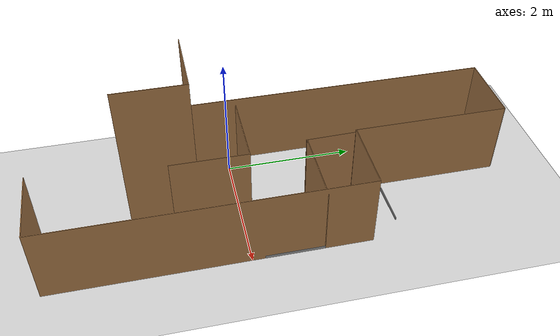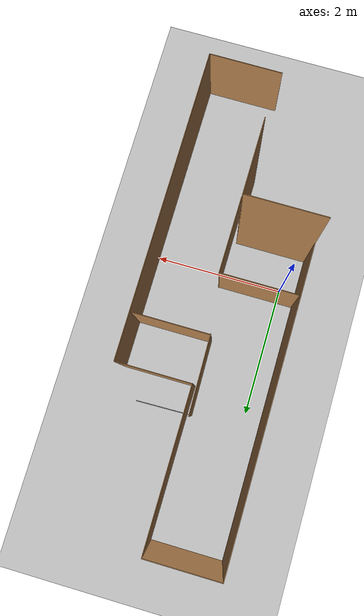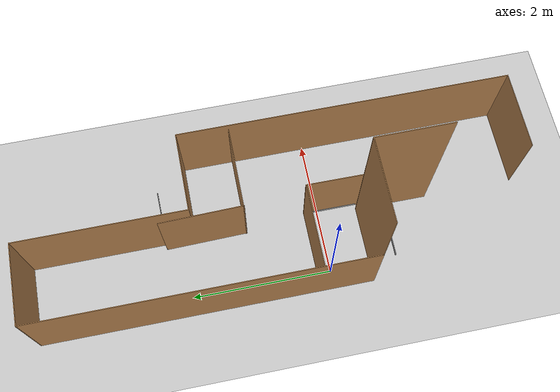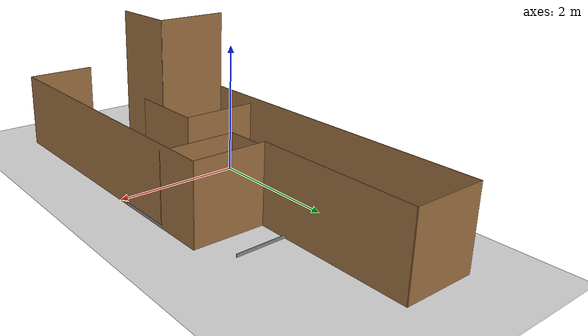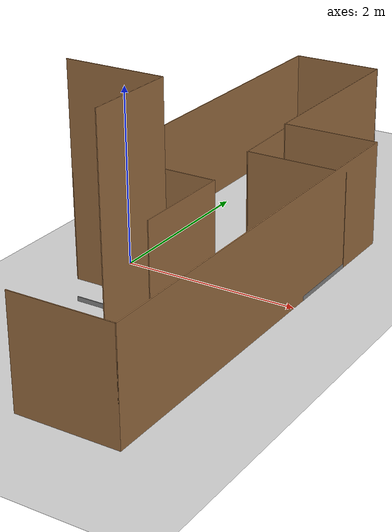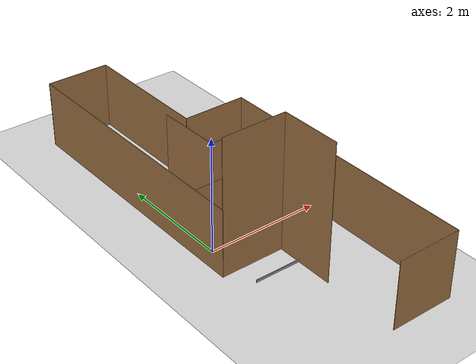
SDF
<sdf version="1.6">
 <world name="default">
  <light name="sun" type="directional">
   <pose>0 0 10 0 -0 0</pose>
   <diffuse>0.8 0.8 0.8 1</diffuse>
   <specular>0.2 0.2 0.2 1</specular>
   <attenuation>
    <range>1000</range>
    <constant>0.9</constant>
    <linear>0.01</linear>
    <quadratic>0.001</quadratic>
   </attenuation>
   <direction>-0.5 0.1 -0.9</direction>
  </light>
  <model name="ground_plane">
   <static>1</static>
   <link name="link">
    <collision name="collision">
     <geometry><plane><normal>0 0 1</normal><size>100 100</size></plane></geometry>
     <surface><friction><ode><mu>100</mu><mu2>50</mu2></ode></friction></surface>
    </collision>
    <visual name="visual">
     <cast_shadows>0</cast_shadows>
     <geometry><plane><normal>0 0 1</normal><size>100 100</size></plane></geometry>
     <material>
      <script><uri>file://media/materials/scripts/gazebo.material</uri><name>Gazebo/Grey</name></script>
     </material>
    </visual>
   </link>
  </model>
  <gravity>0 0 -9.8</gravity>
  <magnetic_field>6e-06 2.3e-05 -4.2e-05</magnetic_field>
  <atmosphere type="adiabatic"/>
  <physics name="default_physics" default="0" type="ode">
   <max_step_size>0.001</max_step_size>
   <real_time_factor>1</real_time_factor>
   <real_time_update_rate>1000</real_time_update_rate>
  </physics>
  <scene><ambient>0.4 0.4 0.4 1</ambient><background>0.7 0.7 0.7 1</background><shadows>1</shadows></scene>
  <audio><device>default</device></audio>
  <spherical_coordinates>
   <surface_model>EARTH_WGS84</surface_model>
   <latitude_deg>0</latitude_deg>
   <longitude_deg>0</longitude_deg>
   <elevation>0</elevation>
   <heading_deg>0</heading_deg>
  </spherical_coordinates>
  <model name="MAN1_CENTER">
   <model name="Arena_MAN1">
    <model name="Paredes_personalizadas_finder">
     <pose>0.529687 0.221886 0 0 -0 0</pose>
     <link name="Wall_0">
      <collision name="Wall_0_Collision">
       <geometry><box><size>1.195 0.01 1.1</size></box></geometry>
       <pose>0 0 0.55 0 -0 0</pose>
      </collision>
      <visual name="Wall_0_Visual">
       <pose>0 0 0.55 0 -0 0</pose>
       <geometry><box><size>1.195 0.01 1.1</size></box></geometry>
       <material>
        <script><uri>file://media/materials/scripts/gazebo.material</uri><name>Gazebo/Wood</name></script>
        <ambient>1 1 1 1</ambient>
       </material>
       <meta><layer>0</layer></meta>
      </visual>
      <pose>0 0.444 0 0 -0 3.14159</pose>
     </link>
     <link name="Wall_2">
      <collision name="Wall_2_Collision">
       <geometry><box><size>0.898 0.01 0.05</size></box></geometry>
       <pose>0 0 0.025 0 -0 0</pose>
      </collision>
      <visual name="Wall_2_Visual">
       <pose>0 0 0.025 0 -0 0</pose>
       <geometry><box><size>0.898 0.01 0.05</size></box></geometry>
       <material>
        <script><uri>file://media/materials/scripts/gazebo.material</uri><name>Gazebo/Grey</name></script>
        <ambient>1 1 1 1</ambient>
       </material>
       <meta><layer>0</layer></meta>
      </visual>
      <pose>0.5925 0 0 0 -0 -1.5708</pose>
     </link>
     <static>1</static>
    </model>
    <model name="Paredes_personalizadas_finder_0">
     <pose>-0.37663 -0.812332 0 0 0 -1.57597</pose>
     <link name="Wall_0">
      <collision name="Wall_0_Collision">
       <geometry><box><size>1.195 0.01 1.1</size></box></geometry>
       <pose>0 0 0.55 0 -0 0</pose>
      </collision>
      <visual name="Wall_0_Visual">
       <pose>0 0 0.55 0 -0 0</pose>
       <geometry><box><size>1.195 0.01 1.1</size></box></geometry>
       <material>
        <script><uri>file://media/materials/scripts/gazebo.material</uri><name>Gazebo/Wood</name></script>
        <ambient>1 1 1 1</ambient>
       </material>
       <meta><layer>0</layer></meta>
      </visual>
      <pose>0 0.444 0 0 -0 3.14159</pose>
     </link>
     <link name="Wall_2">
      <collision name="Wall_2_Collision">
       <geometry><box><size>0.898 0.01 0.05</size></box></geometry>
       <pose>0 0 0.025 0 -0 0</pose>
      </collision>
      <visual name="Wall_2_Visual">
       <pose>0 0 0.025 0 -0 0</pose>
       <geometry><box><size>0.898 0.01 0.05</size></box></geometry>
       <material>
        <script><uri>file://media/materials/scripts/gazebo.material</uri><name>Gazebo/Grey</name></script>
        <ambient>1 1 1 1</ambient>
       </material>
       <meta><layer>0</layer></meta>
      </visual>
      <pose>0.5925 0 0 0 -0 -1.5708</pose>
     </link>
     <static>1</static>
    </model>
    <model name="Paredes_personalizadas_finder_1">
     <pose>-0.526117 -0.66875 0 0 -0 0</pose>
     <link name="Wall_0">
      <collision name="Wall_0_Collision">
       <geometry><box><size>1.195 0.01 1.1</size></box></geometry>
       <pose>0 0 0.55 0 -0 0</pose>
      </collision>
      <visual name="Wall_0_Visual">
       <pose>0 0 0.55 0 -0 0</pose>
       <geometry><box><size>1.195 0.01 1.1</size></box></geometry>
       <material>
        <script><uri>file://media/materials/scripts/gazebo.material</uri><name>Gazebo/Wood</name></script>
        <ambient>1 1 1 1</ambient>
       </material>
       <meta><layer>0</layer></meta>
      </visual>
      <pose>0 0.444 0 0 -0 3.14159</pose>
     </link>
     <link name="Wall_2">
      <collision name="Wall_2_Collision">
       <geometry><box><size>0.898 0.01 0.05</size></box></geometry>
       <pose>0 0 0.025 0 -0 0</pose>
      </collision>
      <visual name="Wall_2_Visual">
       <pose>0 0 0.025 0 -0 0</pose>
       <geometry><box><size>0.898 0.01 0.05</size></box></geometry>
       <material>
        <script><uri>file://media/materials/scripts/gazebo.material</uri><name>Gazebo/Grey</name></script>
        <ambient>1 1 1 1</ambient>
       </material>
       <meta><layer>0</layer></meta>
      </visual>
      <pose>0.5925 0 0 0 -0 -1.5708</pose>
     </link>
     <static>1</static>
    </model>
    <model name="Paredes_personalizadas_finder_2">
     <pose>0.373059 1.2592 0 0 -0 1.59141</pose>
     <link name="Wall_0">
      <collision name="Wall_0_Collision">
       <geometry><box><size>1.195 0.01 1.1</size></box></geometry>
       <pose>0 0 0.55 0 -0 0</pose>
      </collision>
      <visual name="Wall_0_Visual">
       <pose>0 0 0.55 0 -0 0</pose>
       <geometry><box><size>1.195 0.01 1.1</size></box></geometry>
       <material>
        <script><uri>file://media/materials/scripts/gazebo.material</uri><name>Gazebo/Wood</name></script>
        <ambient>1 1 1 1</ambient>
       </material>
       <meta><layer>0</layer></meta>
      </visual>
      <pose>0 0.444 0 0 -0 3.14159</pose>
     </link>
     <link name="Wall_2">
      <collision name="Wall_2_Collision">
       <geometry><box><size>0.898 0.01 0.05</size></box></geometry>
       <pose>0 0 0.025 0 -0 0</pose>
      </collision>
      <visual name="Wall_2_Visual">
       <pose>0 0 0.025 0 -0 0</pose>
       <geometry><box><size>0.898 0.01 0.05</size></box></geometry>
       <material>
        <script><uri>file://media/materials/scripts/gazebo.material</uri><name>Gazebo/Grey</name></script>
        <ambient>1 1 1 1</ambient>
       </material>
       <meta><layer>0</layer></meta>
      </visual>
      <pose>0.5925 0 0 0 -0 -1.5708</pose>
     </link>
     <static>1</static>
    </model>
    <static>0</static>
    <pose>0.003301 -0.100195 0 0 -0 0</pose>
   </model>
   <model name="MAN1_(CENTER)">
    <pose>-0.003301 0.1002 0 0 -0 0</pose>
    <link name="Wall_0">
     <collision name="Wall_0_Collision">
      <geometry><box><size>1.135 0.01 1.2</size></box></geometry>
      <pose>0 0 0.6 0 -0 0</pose>
     </collision>
     <visual name="Wall_0_Visual">
      <pose>0 0 0.6 0 -0 0</pose>
      <geometry><box><size>1.135 0.01 1.2</size></box></geometry>
      <material>
       <script><uri>file://media/materials/scripts/gazebo.material</uri><name>Gazebo/Wood</name></script>
       <ambient>1 1 1 1</ambient>
      </material>
      <meta><layer>0</layer></meta>
     </visual>
     <pose>0.565 -3.585 0 0 -0 0</pose>
    </link>
    <link name="Wall_10">
     <collision name="Wall_10_Collision">
      <geometry><box><size>4.795 0.01 1.2</size></box></geometry>
      <pose>0 0 0.6 0 -0 0</pose>
     </collision>
     <visual name="Wall_10_Visual">
      <pose>0 0 0.6 0 -0 0</pose>
      <geometry><box><size>4.795 0.01 1.2</size></box></geometry>
      <material>
       <script><uri>file://media/materials/scripts/gazebo.material</uri><name>Gazebo/Wood</name></script>
       <ambient>1 1 1 1</ambient>
      </material>
      <meta><layer>0</layer></meta>
     </visual>
     <pose>-1.1275 1.1925 0 0 -0 -1.5708</pose>
    </link>
    <link name="Wall_16">
     <collision name="Wall_16_Collision">
      <geometry><box><size>1.135 0.01 2.4</size></box></geometry>
      <pose>0 0 1.2 0 -0 0</pose>
     </collision>
     <visual name="Wall_16_Visual">
      <pose>0 0 1.2 0 -0 0</pose>
      <geometry><box><size>1.135 0.01 2.4</size></box></geometry>
      <material>
       <script><uri>file://media/materials/scripts/gazebo.material</uri><name>Gazebo/Wood</name></script>
       <ambient>1 1 1 1</ambient>
      </material>
      <meta><layer>0</layer></meta>
     </visual>
     <pose>-0.565 -1.2 0 0 -0 0</pose>
    </link>
    <link name="Wall_18">
     <collision name="Wall_18_Collision">
      <geometry><box><size>1.06 0.01 2.4</size></box></geometry>
      <pose>0 0 1.2 0 -0 0</pose>
     </collision>
     <visual name="Wall_18_Visual">
      <pose>0 0 1.2 0 -0 0</pose>
      <geometry><box><size>1.06 0.01 2.4</size></box></geometry>
      <material>
       <script><uri>file://media/materials/scripts/gazebo.material</uri><name>Gazebo/Wood</name></script>
       <ambient>1 1 1 1</ambient>
      </material>
      <meta><layer>0</layer></meta>
     </visual>
     <pose>-0.0025 -1.725 0 0 -0 -1.5708</pose>
    </link>
    <link name="Wall_2">
     <collision name="Wall_2_Collision">
      <geometry><box><size>4.795 0.01 1.2</size></box></geometry>
      <pose>0 0 0.6 0 -0 0</pose>
     </collision>
     <visual name="Wall_2_Visual">
      <pose>0 0 0.6 0 -0 0</pose>
      <geometry><box><size>4.795 0.01 1.2</size></box></geometry>
      <material>
       <script><uri>file://media/materials/scripts/gazebo.material</uri><name>Gazebo/Wood</name></script>
       <ambient>1 1 1 1</ambient>
      </material>
      <meta><layer>0</layer></meta>
     </visual>
     <pose>1.1275 -1.1925 0 0 -0 1.5708</pose>
    </link>
    <link name="Wall_4">
     <collision name="Wall_4_Collision">
      <geometry><box><size>1.13997 0.01 1.2</size></box></geometry>
      <pose>0 0 0.6 0 -0 0</pose>
     </collision>
     <visual name="Wall_4_Visual">
      <pose>0 0 0.6 0 -0 0</pose>
      <geometry><box><size>1.13997 0.01 1.2</size></box></geometry>
      <material>
       <script><uri>file://media/materials/scripts/gazebo.material</uri><name>Gazebo/Wood</name></script>
       <ambient>1 1 1 1</ambient>
      </material>
      <meta><layer>0</layer></meta>
     </visual>
     <pose>0.5625 1.2 0 0 -0 3.14159</pose>
    </link>
    <link name="Wall_6">
     <collision name="Wall_6_Collision">
      <geometry><box><size>2.395 0.01 1.2</size></box></geometry>
      <pose>0 0 0.6 0 -0 0</pose>
     </collision>
     <visual name="Wall_6_Visual">
      <pose>0 0 0.6 0 -0 0</pose>
      <geometry><box><size>2.395 0.01 1.2</size></box></geometry>
      <material>
       <script><uri>file://media/materials/scripts/gazebo.material</uri><name>Gazebo/Wood</name></script>
       <ambient>1 1 1 1</ambient>
      </material>
      <meta><layer>0</layer></meta>
     </visual>
     <pose>-0.0025 2.3925 0 0 -0 1.5708</pose>
    </link>
    <link name="Wall_8">
     <collision name="Wall_8_Collision">
      <geometry><box><size>1.135 0.01 1.2</size></box></geometry>
      <pose>0 0 0.6 0 -0 0</pose>
     </collision>
     <visual name="Wall_8_Visual">
      <pose>0 0 0.6 0 -0 0</pose>
      <geometry><box><size>1.135 0.01 1.2</size></box></geometry>
      <material>
       <script><uri>file://media/materials/scripts/gazebo.material</uri><name>Gazebo/Wood</name></script>
       <ambient>1 1 1 1</ambient>
      </material>
      <meta><layer>0</layer></meta>
     </visual>
     <pose>-0.565 3.585 0 0 -0 3.14159</pose>
    </link>
    <static>1</static>
   </model>
   <static>0</static>
   <pose>0.876363 0.51464 0 0 -0 0</pose>
  </model>
 </world>
</sdf>
